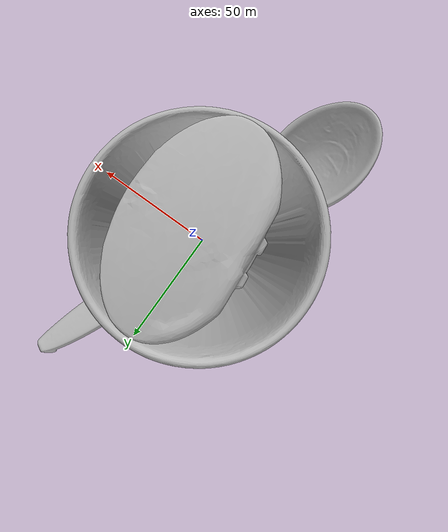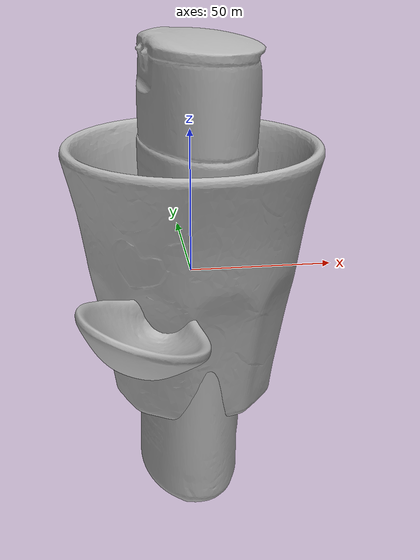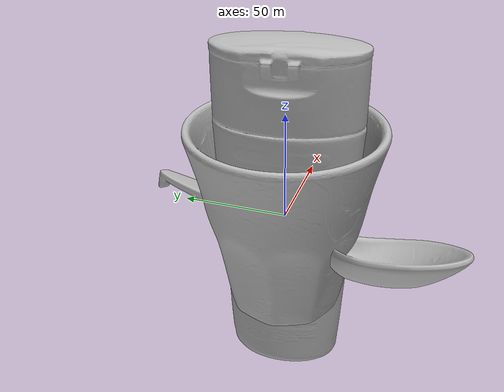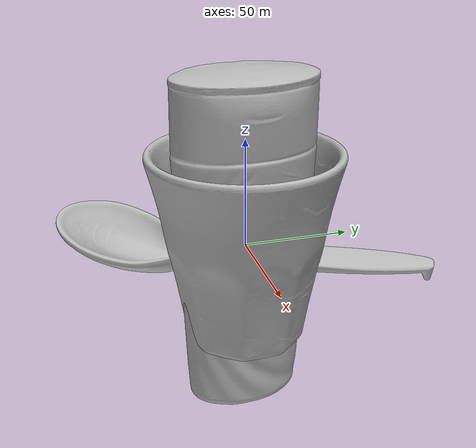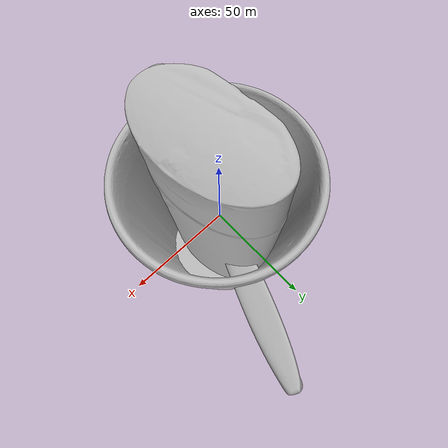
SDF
<sdf version="1.4">
 <world name="default">
  <light name="light1" type="point">
   <pose>0 0 1 0 0 0</pose>
   <diffuse>3 3 3 1</diffuse>
   <specular>3 3 3 1</specular>
  </light>
  <light name="light2" type="point">
   <pose>0 0.5 2 0 0 0</pose>
   <diffuse>1 1 1 1</diffuse>
   <specular>1 1 1 1</specular>
  </light>
  <light name="light3" type="point">
   <pose>0 0.5 2 0 0 0</pose>
   <diffuse>3 3 3 1</diffuse>
   <specular>3 3 3 1</specular>
  </light>
  <scene><ambient>0.7 0.7 0.7</ambient></scene>
  <model name="bottle1">
   <link name="link_bottle1">
    <collision name="default">
     <geometry>
      <mesh><uri>model://conditioner/collision_meshes/collision.obj</uri><scale>1.0 1.0 1.0</scale></mesh>
     </geometry>
     <surface>
      <friction><ode><mu>0.5</mu><mu2>0.5</mu2></ode></friction>
      <contact><ode><max_vel>0</max_vel><min_depth>0.0001</min_depth><kp>1e8</kp></ode></contact>
     </surface>
    </collision>
    <visual name="default">
     <geometry>
      <mesh><uri>model://conditioner/visual_meshes/visual.dae</uri><scale>1.0 1.0 1.0</scale></mesh>
     </geometry>
    </visual>
    <inertial>
     <mass>0.31316134333610535</mass>
     <pose>-0.00055994390277192 -0.0001729748910292983 0.004359682556241751 -0.005038373535624127 0.01530604069317056 0.015072338587352078</pose>
     <inertia>
      <ixx>0.0006812382</ixx>
      <iyy>0.000729753</iyy>
      <izz>0.000105037434</izz>
      <ixy>0</ixy>
      <ixz>0</ixz>
      <iyz>0</iyz>
     </inertia>
    </inertial>
   </link>
   <pose>0.23195946216583252 -0.13029028475284576 0.08122973144054413 0.03689140774685288 -0.015659498310213255 1.6459254563816226</pose>
  </model>
  <model name="bottle2">
   <link name="link_bottle2">
    <collision name="default">
     <geometry>
      <mesh><uri>model://pigeon/collision_meshes/collision.obj</uri><scale>1.0 1.0 1.0</scale></mesh>
     </geometry>
     <surface>
      <friction><ode><mu>0.5</mu><mu2>0.5</mu2></ode></friction>
      <contact><ode><max_vel>0</max_vel><min_depth>0.0001</min_depth><kp>1e8</kp></ode></contact>
     </surface>
    </collision>
    <visual name="default">
     <geometry><mesh><uri>model://pigeon/visual_meshes/visual.dae</uri><scale>1.0 1.0 1.0</scale></mesh></geometry>
    </visual>
    <inertial>
     <mass>0.6510184407234192</mass>
     <pose>-9.675473847892135e-05 -0.00019276776583865285 -0.01593620888888836 -0.011704407543161608 -0.0012978192378484078 -0.04198827283679603</pose>
     <inertia>
      <ixx>0.0016273881</ixx>
      <iyy>0.0017372583</iyy>
      <izz>0.00033475916</izz>
      <ixy>0</ixy>
      <ixz>0</ixz>
      <iyz>0</iyz>
     </inertia>
    </inertial>
   </link>
   <pose>-0.05219762772321701 0.07774084061384201 0.09864477813243866 2.3978274331684102e-05 3.0522780258040827e-06 -2.9474797119564777</pose>
  </model>
  <model name="silverware1">
   <link name="link_silverware1">
    <collision name="default">
     <geometry>
      <mesh><uri>model://doraemon_spoon/collision_meshes/collision.obj</uri><scale>1.0 1.0 1.0</scale></mesh>
     </geometry>
     <surface>
      <friction><ode><mu>0.5</mu><mu2>0.5</mu2></ode></friction>
      <contact><ode><max_vel>0</max_vel><min_depth>0.0001</min_depth><kp>1e8</kp></ode></contact>
     </surface>
    </collision>
    <visual name="default">
     <geometry>
      <mesh><uri>model://doraemon_spoon/visual_meshes/visual.dae</uri><scale>1.0 1.0 1.0</scale></mesh>
     </geometry>
    </visual>
    <inertial>
     <mass>0.020366016775369644</mass>
     <pose>-0.022165074944496155 -0.0006374584045261145 -0.0033325462136417627 -0.009147200915366215 0.0738041822243956 -0.014123826891092987</pose>
     <inertia>
      <ixx>1.5952605e-06</ixx>
      <iyy>4.5307766e-05</iyy>
      <izz>4.6078047e-05</izz>
      <ixy>0</ixy>
      <ixz>0</ixz>
      <iyz>0</iyz>
     </inertia>
    </inertial>
   </link>
   <pose>0.03640778362751007 0.2381925731897354 0.014739340171217918 0.27880062259614874 -0.010334411750458085 1.2093883121416764</pose>
  </model>
  <model name="stationery1">
   <link name="link_stationery1">
    <collision name="default">
     <geometry>
      <mesh><uri>model://correction_fuid/collision_meshes/collision.obj</uri><scale>1.0 1.0 1.0</scale></mesh>
     </geometry>
     <surface>
      <friction><ode><mu>0.5</mu><mu2>0.5</mu2></ode></friction>
      <contact><ode><max_vel>0</max_vel><min_depth>0.0001</min_depth><kp>1e8</kp></ode></contact>
     </surface>
    </collision>
    <visual name="default">
     <geometry>
      <mesh><uri>model://correction_fuid/visual_meshes/visual.dae</uri><scale>1.0 1.0 1.0</scale></mesh>
     </geometry>
    </visual>
    <inertial>
     <mass>0.02487199380993843</mass>
     <pose>-0.00012557733862195164 -0.0009722901741042733 -0.001618212671019137 -0.010846607936808557 0.019488255039962172 -0.015992454917835536</pose>
     <inertia>
      <ixx>2.4088951e-05</ixx>
      <iyy>1.4578937e-06</iyy>
      <izz>2.4715917e-05</izz>
      <ixy>0</ixy>
      <ixz>0</ixz>
      <iyz>0</iyz>
     </inertia>
    </inertial>
   </link>
   <pose>-0.031087426468729973 0.2659638226032257 0.009632829576730728 -0.0017272097372475087 -0.05616746121917464 -3.0896001528138264</pose>
  </model>
  <model name="bowl1">
   <link name="link_bowl1">
    <collision name="default">
     <geometry>
      <mesh><uri>model://doraemon_bowl/collision_meshes/collision.obj</uri><scale>1.0 1.0 1.0</scale></mesh>
     </geometry>
     <surface>
      <friction><ode><mu>0.5</mu><mu2>0.5</mu2></ode></friction>
      <contact><ode><max_vel>0</max_vel><min_depth>0.0001</min_depth><kp>1e8</kp></ode></contact>
     </surface>
    </collision>
    <visual name="default">
     <geometry>
      <mesh><uri>model://doraemon_bowl/visual_meshes/visual.dae</uri><scale>1.0 1.0 1.0</scale></mesh>
     </geometry>
    </visual>
    <inertial>
     <mass>0.06713785231113434</mass>
     <pose>-0.014629548415541649 0.000485710974317044 -0.0020864871330559254 -0.005093962398800634 -0.10568405274446478 -0.026426476578293747</pose>
     <inertia>
      <ixx>9.309732e-05</ixx>
      <iyy>0.00012251528</iyy>
      <izz>0.00018024874</izz>
      <ixy>0</ixy>
      <ixz>0</ixz>
      <iyz>0</iyz>
     </inertia>
    </inertial>
   </link>
   <pose>0.1415751427412033 0.17129576206207275 0.02590549737215042 0.008597293047338042 0.006355355164135907 -0.8515636412807202</pose>
  </model>
  <model name="cup1">
   <link name="link_cup1">
    <collision name="default">
     <geometry>
      <mesh><uri>model://hello_kitty_cup/collision_meshes/collision.obj</uri><scale>1.0 1.0 1.0</scale></mesh>
     </geometry>
     <surface>
      <friction><ode><mu>0.5</mu><mu2>0.5</mu2></ode></friction>
      <contact><ode><max_vel>0</max_vel><min_depth>0.0001</min_depth><kp>1e8</kp></ode></contact>
     </surface>
    </collision>
    <visual name="default">
     <geometry>
      <mesh><uri>model://hello_kitty_cup/visual_meshes/visual.dae</uri><scale>1.0 1.0 1.0</scale></mesh>
     </geometry>
    </visual>
    <inertial>
     <mass>0.13384777307510376</mass>
     <pose>0.00027251095161773264 0.00027950218645855784 0.0030449770856648684 0.057791450277227645 0.007964955326408191 -0.02045228086216793</pose>
     <inertia>
      <ixx>0.0001843247</ixx>
      <iyy>0.0001863793</iyy>
      <izz>0.00015541737</izz>
      <ixy>0</ixy>
      <ixz>0</ixz>
      <iyz>0</iyz>
     </inertia>
    </inertial>
   </link>
   <pose>0.21741656959056854 -0.21706385910511017 0.04621630907058716 -0.005881366172211538 0.01079866142003368 -0.7399554524523039</pose>
  </model>
  <model name="plate1">
   <link name="link_plate1">
    <collision name="default">
     <geometry>
      <mesh><uri>model://hello_kitty_plate/collision_meshes/collision.obj</uri><scale>1.0 1.0 1.0</scale></mesh>
     </geometry>
     <surface>
      <friction><ode><mu>0.5</mu><mu2>0.5</mu2></ode></friction>
      <contact><ode><max_vel>0</max_vel><min_depth>0.0001</min_depth><kp>1e8</kp></ode></contact>
     </surface>
    </collision>
    <visual name="default">
     <geometry>
      <mesh><uri>model://hello_kitty_plate/visual_meshes/visual.dae</uri><scale>1.0 1.0 1.0</scale></mesh>
     </geometry>
    </visual>
    <inertial>
     <mass>0.0821625292301178</mass>
     <pose>0.0073142931796610355 0.00028937371098436415 -0.0027947186026722193 -0.0001043184795654353 -0.007054440405958318 -0.014449014916312054</pose>
     <inertia>
      <ixx>0.00015843393</ixx>
      <iyy>0.00029901267</iyy>
      <izz>0.00045402072</izz>
      <ixy>0</ixy>
      <ixz>0</ixz>
      <iyz>0</iyz>
     </inertia>
    </inertial>
   </link>
   <pose>0.1641979217529297 0.3195953369140625 0.008291353471577168 0.0004621958689617452 0.004171647180400056 -3.003423343411753</pose>
  </model>
  <physics type="ode">
   <max_contacts>50</max_contacts>
   <ode>
    <solver><type>quick</type><iters>75</iters></solver>
    <constraints>
     <contact_max_correcting_vel>0</contact_max_correcting_vel>
     <contact_surface_layer>0</contact_surface_layer>
    </constraints>
   </ode>
  </physics>
 </world>
</sdf>
